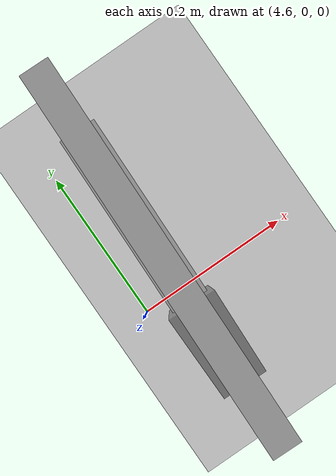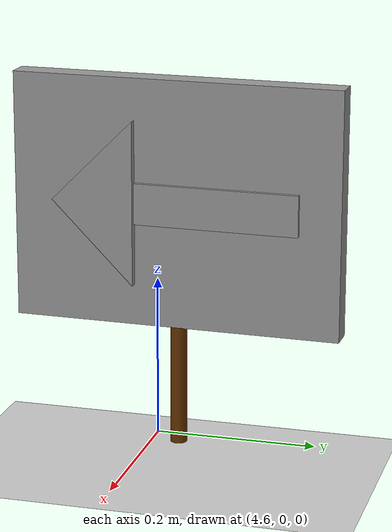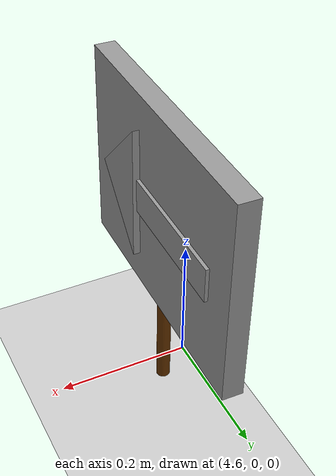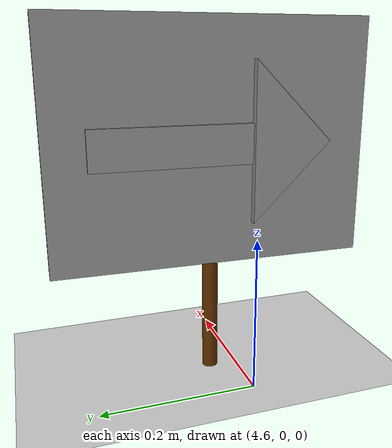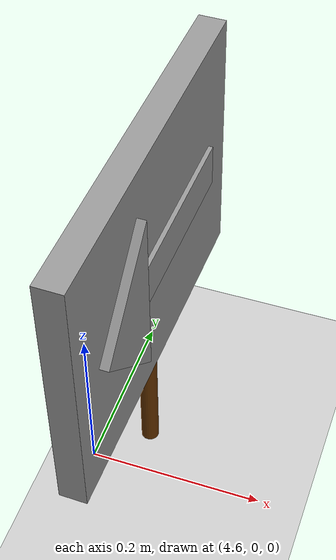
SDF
<sdf version="1.7">
 <world name="default">
  <model name="ground_plane">
   <static>1</static>
   <link name="link">
    <collision name="collision">
     <geometry><plane><normal>0 0 1</normal><size>100 100</size></plane></geometry>
     <surface>
      <contact><collide_bitmask>65535</collide_bitmask></contact>
      <friction><ode><mu>100</mu><mu2>50</mu2></ode></friction>
     </surface>
    </collision>
    <visual name="visual">
     <cast_shadows>0</cast_shadows>
     <geometry><plane><normal>0 0 1</normal><size>100 100</size></plane></geometry>
     <material>
      <script><uri>file://media/materials/scripts/gazebo.material</uri><name>Gazebo/Grey</name></script>
     </material>
    </visual>
   </link>
  </model>
  <model name="arrow_board">
   <link name="link_0">
    <inertial>
     <mass>1</mass>
     <inertia><ixx>0.145833</ixx><ixy>0</ixy><ixz>0</ixz><iyy>0.145833</iyy><iyz>0</iyz><izz>0.125</izz></inertia>
    </inertial>
    <pose>-0.01675 0.00625 0.1625 0 -0 0</pose>
    <gravity>0</gravity>
    <visual name="visual">
     <geometry><cylinder><radius>0.01</radius><length>0.3</length></cylinder></geometry>
     <material>
      <lighting>1</lighting>
      <script><uri>file://media/materials/scripts/gazebo.material</uri><name>Gazebo/Grey</name></script>
      <shader type="pixel"><normal_map>__default__</normal_map></shader>
      <ambient>0.4 0.2 0 1</ambient>
      <diffuse>0.4 0.2 0 1</diffuse>
      <specular>0 0 0 1</specular>
      <emissive>0 0 0 1</emissive>
     </material>
    </visual>
    <collision name="collision">
     <geometry><cylinder><radius>0.01</radius><length>0.3</length></cylinder></geometry>
     <surface>
      <friction>
       <ode><mu>1</mu><mu2>1</mu2><fdir1>0 0 0</fdir1><slip1>0</slip1><slip2>0</slip2></ode>
       <torsional>
        <coefficient>1</coefficient>
        <patch_radius>0</patch_radius>
        <surface_radius>0</surface_radius>
        <use_patch_radius>1</use_patch_radius>
        <ode><slip>0</slip></ode>
       </torsional>
      </friction>
      <bounce><restitution_coefficient>0</restitution_coefficient><threshold>1e+06</threshold></bounce>
      <contact>
       <collide_without_contact>0</collide_without_contact>
       <collide_without_contact_bitmask>1</collide_without_contact_bitmask>
       <collide_bitmask>1</collide_bitmask>
       <ode>
        <soft_cfm>0</soft_cfm>
        <soft_erp>0.2</soft_erp>
        <kp>1e+13</kp>
        <kd>1</kd>
        <max_vel>0.01</max_vel>
        <min_depth>0</min_depth>
       </ode>
       <bullet>
        <split_impulse>1</split_impulse>
        <split_impulse_penetration_threshold>-0.01</split_impulse_penetration_threshold>
        <soft_cfm>0</soft_cfm>
        <soft_erp>0.2</soft_erp>
        <kp>1e+13</kp>
        <kd>1</kd>
       </bullet>
      </contact>
     </surface>
    </collision>
   </link>
   <link name="link_1">
    <inertial>
     <mass>1</mass>
     <inertia>
      <ixx>0.166667</ixx>
      <ixy>0</ixy>
      <ixz>0</ixz>
      <iyy>0.166667</iyy>
      <iyz>0</iyz>
      <izz>0.166667</izz>
     </inertia>
    </inertial>
    <pose>-0.01675 0.00625 0.3125 0 -0 0</pose>
    <gravity>0</gravity>
    <visual name="visual">
     <geometry><box><size>0.4 0.03 0.3</size></box></geometry>
     <material>
      <lighting>1</lighting>
      <script><uri>file://media/materials/scripts/gazebo.material</uri><name>Gazebo/Grey</name></script>
      <shader type="pixel"><normal_map>__default__</normal_map></shader>
      <ambient>1 1 1 1</ambient>
      <diffuse>1 1 1 1</diffuse>
      <specular>1 1 1 1</specular>
      <emissive>0 0 0 1</emissive>
     </material>
    </visual>
    <collision name="collision">
     <geometry><box><size>0.4 0.03 0.3</size></box></geometry>
     <surface>
      <friction>
       <ode><mu>1</mu><mu2>1</mu2><fdir1>0 0 0</fdir1><slip1>0</slip1><slip2>0</slip2></ode>
       <torsional>
        <coefficient>1</coefficient>
        <patch_radius>0</patch_radius>
        <surface_radius>0</surface_radius>
        <use_patch_radius>1</use_patch_radius>
        <ode><slip>0</slip></ode>
       </torsional>
      </friction>
      <bounce><restitution_coefficient>0</restitution_coefficient><threshold>1e+06</threshold></bounce>
      <contact>
       <collide_without_contact>0</collide_without_contact>
       <collide_without_contact_bitmask>1</collide_without_contact_bitmask>
       <collide_bitmask>1</collide_bitmask>
       <ode>
        <soft_cfm>0</soft_cfm>
        <soft_erp>0.2</soft_erp>
        <kp>1e+13</kp>
        <kd>1</kd>
        <max_vel>0.01</max_vel>
        <min_depth>0</min_depth>
       </ode>
       <bullet>
        <split_impulse>1</split_impulse>
        <split_impulse_penetration_threshold>-0.01</split_impulse_penetration_threshold>
        <soft_cfm>0</soft_cfm>
        <soft_erp>0.2</soft_erp>
        <kp>1e+13</kp>
        <kd>1</kd>
       </bullet>
      </contact>
     </surface>
    </collision>
   </link>
   <link name="link_2">
    <inertial>
     <mass>1</mass>
     <inertia>
      <ixx>0.166667</ixx>
      <ixy>0</ixy>
      <ixz>0</ixz>
      <iyy>0.166667</iyy>
      <iyz>0</iyz>
      <izz>0.166667</izz>
     </inertia>
    </inertial>
    <pose>-0.06675 0.00625 0.3125 0 -0 0</pose>
    <gravity>0</gravity>
    <visual name="visual">
     <geometry><box><size>0.2 0.04 0.05</size></box></geometry>
     <material>
      <lighting>1</lighting>
      <script><uri>file://media/materials/scripts/gazebo.material</uri><name>Gazebo/Grey</name></script>
      <shader type="pixel"><normal_map>__default__</normal_map></shader>
      <ambient>0 0 0 1</ambient>
      <diffuse>0 0 0 1</diffuse>
      <specular>0 0 0 1</specular>
      <emissive>0 0 0 1</emissive>
     </material>
    </visual>
    <collision name="collision">
     <geometry><box><size>0.2 0.04 0.05</size></box></geometry>
     <surface>
      <friction>
       <ode><mu>1</mu><mu2>1</mu2><fdir1>0 0 0</fdir1><slip1>0</slip1><slip2>0</slip2></ode>
       <torsional>
        <coefficient>1</coefficient>
        <patch_radius>0</patch_radius>
        <surface_radius>0</surface_radius>
        <use_patch_radius>1</use_patch_radius>
        <ode><slip>0</slip></ode>
       </torsional>
      </friction>
      <bounce><restitution_coefficient>0</restitution_coefficient><threshold>1e+06</threshold></bounce>
      <contact>
       <collide_without_contact>0</collide_without_contact>
       <collide_without_contact_bitmask>1</collide_without_contact_bitmask>
       <collide_bitmask>1</collide_bitmask>
       <ode>
        <soft_cfm>0</soft_cfm>
        <soft_erp>0.2</soft_erp>
        <kp>1e+13</kp>
        <kd>1</kd>
        <max_vel>0.01</max_vel>
        <min_depth>0</min_depth>
       </ode>
       <bullet>
        <split_impulse>1</split_impulse>
        <split_impulse_penetration_threshold>-0.01</split_impulse_penetration_threshold>
        <soft_cfm>0</soft_cfm>
        <soft_erp>0.2</soft_erp>
        <kp>1e+13</kp>
        <kd>1</kd>
       </bullet>
      </contact>
     </surface>
    </collision>
   </link>
   <link name="link_4">
    <inertial>
     <mass>1</mass>
     <inertia>
      <ixx>0.166667</ixx>
      <ixy>0</ixy>
      <ixz>0</ixz>
      <iyy>0.166667</iyy>
      <iyz>0</iyz>
      <izz>0.166667</izz>
     </inertia>
    </inertial>
    <pose>0.033583 -0.01875 0.2125 0 -0 0</pose>
    <gravity>0</gravity>
    <visual name="visual">
     <geometry>
      <mesh>
       <uri>/home/ritesh/mobrob_ws/src/mobrob/meshes/arrow_head.stl</uri>
       <scale>0.001 0.001 0.001</scale>
      </mesh>
     </geometry>
     <material>
      <lighting>1</lighting>
      <script><uri>file://media/materials/scripts/gazebo.material</uri><name>Gazebo/Grey</name></script>
      <shader type="pixel"><normal_map>__default__</normal_map></shader>
      <ambient>0 0 0 1</ambient>
      <diffuse>0 0 0 1</diffuse>
      <specular>0 0 0 1</specular>
      <emissive>0 0 0 1</emissive>
     </material>
    </visual>
    <collision name="collision">
     <geometry>
      <mesh>
       <uri>/home/ritesh/mobrob_ws/src/mobrob/meshes/arrow_head.stl</uri>
       <scale>0.001 0.001 0.001</scale>
      </mesh>
     </geometry>
     <surface>
      <friction>
       <ode><mu>1</mu><mu2>1</mu2><fdir1>0 0 0</fdir1><slip1>0</slip1><slip2>0</slip2></ode>
       <torsional>
        <coefficient>1</coefficient>
        <patch_radius>0</patch_radius>
        <surface_radius>0</surface_radius>
        <use_patch_radius>1</use_patch_radius>
        <ode><slip>0</slip></ode>
       </torsional>
      </friction>
      <bounce><restitution_coefficient>0</restitution_coefficient><threshold>1e+06</threshold></bounce>
      <contact>
       <collide_without_contact>0</collide_without_contact>
       <collide_without_contact_bitmask>1</collide_without_contact_bitmask>
       <collide_bitmask>1</collide_bitmask>
       <ode>
        <soft_cfm>0</soft_cfm>
        <soft_erp>0.2</soft_erp>
        <kp>1e+13</kp>
        <kd>1</kd>
        <max_vel>0.01</max_vel>
        <min_depth>0</min_depth>
       </ode>
       <bullet>
        <split_impulse>1</split_impulse>
        <split_impulse_penetration_threshold>-0.01</split_impulse_penetration_threshold>
        <soft_cfm>0</soft_cfm>
        <soft_erp>0.2</soft_erp>
        <kp>1e+13</kp>
        <kd>1</kd>
       </bullet>
      </contact>
     </surface>
    </collision>
   </link>
   <static>0</static>
   <pose>4.64821 0.025669 -0 0 0 -1.59336</pose>
  </model>
 </world>
</sdf>
